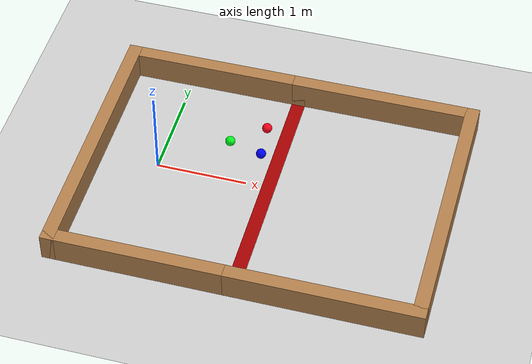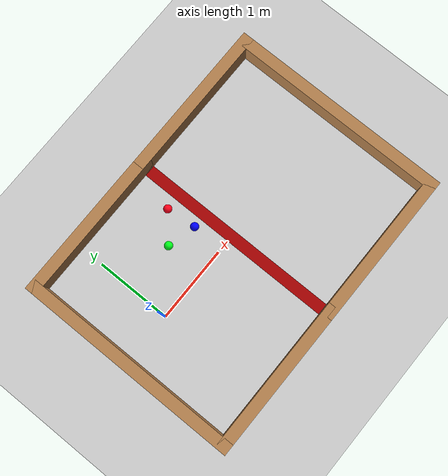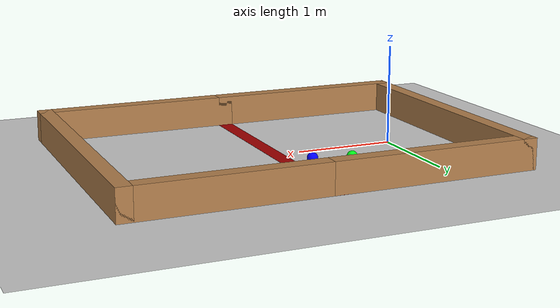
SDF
<sdf version="1.7">
 <world name="default">
  <light name="sun" type="directional">
   <pose>0 0 10 0 -0 0</pose>
   <diffuse>0.8 0.8 0.8 1</diffuse>
   <specular>0.2 0.2 0.2 1</specular>
   <attenuation>
    <range>1000</range>
    <constant>0.9</constant>
    <linear>0.01</linear>
    <quadratic>0.001</quadratic>
   </attenuation>
   <direction>-0.5 0.1 -0.9</direction>
   <spot><inner_angle>0</inner_angle><outer_angle>0</outer_angle><falloff>0</falloff></spot>
  </light>
  <model name="ground_plane">
   <static>1</static>
   <link name="link">
    <collision name="collision">
     <geometry><plane><normal>0 0 1</normal><size>100 100</size></plane></geometry>
     <surface>
      <contact><collide_bitmask>65535</collide_bitmask></contact>
      <friction><ode><mu>100</mu><mu2>50</mu2></ode></friction>
     </surface>
    </collision>
    <visual name="visual">
     <cast_shadows>0</cast_shadows>
     <geometry><plane><normal>0 0 1</normal><size>100 100</size></plane></geometry>
     <material>
      <script><uri>file://media/materials/scripts/gazebo.material</uri><name>Gazebo/Grey</name></script>
     </material>
    </visual>
   </link>
  </model>
  <gravity>0 0 -9.8</gravity>
  <magnetic_field>6e-06 2.3e-05 -4.2e-05</magnetic_field>
  <atmosphere type="adiabatic"/>
  <physics type="ode">
   <max_step_size>0.001</max_step_size>
   <real_time_factor>1</real_time_factor>
   <real_time_update_rate>1000</real_time_update_rate>
  </physics>
  <scene><ambient>0.4 0.4 0.4 1</ambient><background>0.7 0.7 0.7 1</background><shadows>1</shadows></scene>
  <spherical_coordinates>
   <surface_model>EARTH_WGS84</surface_model>
   <latitude_deg>0</latitude_deg>
   <longitude_deg>0</longitude_deg>
   <elevation>0</elevation>
   <heading_deg>0</heading_deg>
  </spherical_coordinates>
  <model name="playground">
   <link name="Wall_67">
    <pose>-1.95 -0.0575 0 0 0 -1.5708</pose>
    <visual name="Wall_67_Visual">
     <pose>0 0 0.155 0 -0 0</pose>
     <geometry><box><size>3 0.15 0.31</size></box></geometry>
     <material>
      <script><uri>file://media/materials/scripts/gazebo.material</uri><name>Gazebo/Wood</name></script>
      <ambient>1 1 1 1</ambient>
      <shader type="pixel"/>
     </material>
     <meta><layer>0</layer></meta>
    </visual>
    <collision name="Wall_67_Collision">
     <pose>0 0 0.155 0 -0 0</pose>
     <geometry><box><size>3 0.15 0.31</size></box></geometry>
     <surface>
      <friction>
       <ode><mu>1</mu><mu2>1</mu2><fdir1>0 0 0</fdir1><slip1>0</slip1><slip2>0</slip2></ode>
       <torsional>
        <coefficient>1</coefficient>
        <patch_radius>0</patch_radius>
        <surface_radius>0</surface_radius>
        <use_patch_radius>1</use_patch_radius>
        <ode><slip>0</slip></ode>
       </torsional>
      </friction>
      <bounce><restitution_coefficient>0</restitution_coefficient><threshold>1e+06</threshold></bounce>
      <contact>
       <collide_without_contact>0</collide_without_contact>
       <collide_without_contact_bitmask>1</collide_without_contact_bitmask>
       <collide_bitmask>1</collide_bitmask>
       <ode>
        <soft_cfm>0</soft_cfm>
        <soft_erp>0.2</soft_erp>
        <kp>1e+13</kp>
        <kd>1</kd>
        <max_vel>0.01</max_vel>
        <min_depth>0</min_depth>
       </ode>
       <bullet>
        <split_impulse>1</split_impulse>
        <split_impulse_penetration_threshold>-0.01</split_impulse_penetration_threshold>
        <soft_cfm>0</soft_cfm>
        <soft_erp>0.2</soft_erp>
        <kp>1e+13</kp>
        <kd>1</kd>
       </bullet>
      </contact>
     </surface>
    </collision>
   </link>
   <link name="Wall_68">
    <pose>-0.975 -1.4825 0 0 -0 0</pose>
    <visual name="Wall_68_Visual">
     <pose>0 0 0.155 0 -0 0</pose>
     <geometry><box><size>2.1 0.15 0.31</size></box></geometry>
     <material>
      <script><uri>file://media/materials/scripts/gazebo.material</uri><name>Gazebo/Wood</name></script>
      <ambient>1 1 1 1</ambient>
      <shader type="pixel"/>
     </material>
     <meta><layer>0</layer></meta>
    </visual>
    <collision name="Wall_68_Collision">
     <pose>0 0 0.155 0 -0 0</pose>
     <geometry><box><size>2.1 0.15 0.31</size></box></geometry>
     <surface>
      <friction>
       <ode><mu>1</mu><mu2>1</mu2><fdir1>0 0 0</fdir1><slip1>0</slip1><slip2>0</slip2></ode>
       <torsional>
        <coefficient>1</coefficient>
        <patch_radius>0</patch_radius>
        <surface_radius>0</surface_radius>
        <use_patch_radius>1</use_patch_radius>
        <ode><slip>0</slip></ode>
       </torsional>
      </friction>
      <bounce><restitution_coefficient>0</restitution_coefficient><threshold>1e+06</threshold></bounce>
      <contact>
       <collide_without_contact>0</collide_without_contact>
       <collide_without_contact_bitmask>1</collide_without_contact_bitmask>
       <collide_bitmask>1</collide_bitmask>
       <ode>
        <soft_cfm>0</soft_cfm>
        <soft_erp>0.2</soft_erp>
        <kp>1e+13</kp>
        <kd>1</kd>
        <max_vel>0.01</max_vel>
        <min_depth>0</min_depth>
       </ode>
       <bullet>
        <split_impulse>1</split_impulse>
        <split_impulse_penetration_threshold>-0.01</split_impulse_penetration_threshold>
        <soft_cfm>0</soft_cfm>
        <soft_erp>0.2</soft_erp>
        <kp>1e+13</kp>
        <kd>1</kd>
       </bullet>
      </contact>
     </surface>
    </collision>
   </link>
   <link name="Wall_71">
    <pose>-0.975 1.3675 0 0 -0 0</pose>
    <visual name="Wall_71_Visual">
     <pose>0 0 0.155 0 -0 0</pose>
     <geometry><box><size>2.1 0.15 0.31</size></box></geometry>
     <material>
      <script><uri>file://media/materials/scripts/gazebo.material</uri><name>Gazebo/Wood</name></script>
      <ambient>1 1 1 1</ambient>
      <shader type="pixel"/>
     </material>
     <meta><layer>0</layer></meta>
    </visual>
    <collision name="Wall_71_Collision">
     <pose>0 0 0.155 0 -0 0</pose>
     <geometry><box><size>2.1 0.15 0.31</size></box></geometry>
     <surface>
      <friction>
       <ode><mu>1</mu><mu2>1</mu2><fdir1>0 0 0</fdir1><slip1>0</slip1><slip2>0</slip2></ode>
       <torsional>
        <coefficient>1</coefficient>
        <patch_radius>0</patch_radius>
        <surface_radius>0</surface_radius>
        <use_patch_radius>1</use_patch_radius>
        <ode><slip>0</slip></ode>
       </torsional>
      </friction>
      <bounce><restitution_coefficient>0</restitution_coefficient><threshold>1e+06</threshold></bounce>
      <contact>
       <collide_without_contact>0</collide_without_contact>
       <collide_without_contact_bitmask>1</collide_without_contact_bitmask>
       <collide_bitmask>1</collide_bitmask>
       <ode>
        <soft_cfm>0</soft_cfm>
        <soft_erp>0.2</soft_erp>
        <kp>1e+13</kp>
        <kd>1</kd>
        <max_vel>0.01</max_vel>
        <min_depth>0</min_depth>
       </ode>
       <bullet>
        <split_impulse>1</split_impulse>
        <split_impulse_penetration_threshold>-0.01</split_impulse_penetration_threshold>
        <soft_cfm>0</soft_cfm>
        <soft_erp>0.2</soft_erp>
        <kp>1e+13</kp>
        <kd>1</kd>
       </bullet>
      </contact>
     </surface>
    </collision>
   </link>
   <link name="Wall_73">
    <pose>0 -0.0575 0 0 0 -1.5708</pose>
    <inertial>
     <mass>1</mass>
     <inertia><ixx>1</ixx><ixy>0</ixy><ixz>0</ixz><iyy>1</iyy><iyz>0</iyz><izz>1</izz></inertia>
    </inertial>
    <visual name="Wall_73_Visual">
     <pose>0 0 0.0005 0 -0 0</pose>
     <geometry><box><size>3 0.15 0.001</size></box></geometry>
     <material>
      <script><uri>file://media/materials/scripts/gazebo.material</uri><name>Gazebo/Grey</name></script>
      <ambient>0.643 0 0 1</ambient>
      <shader type="pixel"><normal_map>__default__</normal_map></shader>
      <diffuse>0.7 0.7 0.7 1</diffuse>
      <specular>0.01 0.01 0.01 1</specular>
      <emissive>0 0 0 1</emissive>
     </material>
     <meta><layer>0</layer></meta>
    </visual>
   </link>
   <link name="Wall_75">
    <pose>0.975 1.3675 0 0 -0 0</pose>
    <visual name="Wall_75_Visual">
     <pose>0 0 0.155 0 -0 0</pose>
     <geometry><box><size>2.1 0.15 0.31</size></box></geometry>
     <material>
      <script><uri>file://media/materials/scripts/gazebo.material</uri><name>Gazebo/Wood</name></script>
      <ambient>1 1 1 1</ambient>
      <shader type="pixel"/>
     </material>
     <meta><layer>0</layer></meta>
    </visual>
    <collision name="Wall_75_Collision">
     <pose>0 0 0.155 0 -0 0</pose>
     <geometry><box><size>2.1 0.15 0.31</size></box></geometry>
     <surface>
      <friction>
       <ode><mu>1</mu><mu2>1</mu2><fdir1>0 0 0</fdir1><slip1>0</slip1><slip2>0</slip2></ode>
       <torsional>
        <coefficient>1</coefficient>
        <patch_radius>0</patch_radius>
        <surface_radius>0</surface_radius>
        <use_patch_radius>1</use_patch_radius>
        <ode><slip>0</slip></ode>
       </torsional>
      </friction>
      <bounce><restitution_coefficient>0</restitution_coefficient><threshold>1e+06</threshold></bounce>
      <contact>
       <collide_without_contact>0</collide_without_contact>
       <collide_without_contact_bitmask>1</collide_without_contact_bitmask>
       <collide_bitmask>1</collide_bitmask>
       <ode>
        <soft_cfm>0</soft_cfm>
        <soft_erp>0.2</soft_erp>
        <kp>1e+13</kp>
        <kd>1</kd>
        <max_vel>0.01</max_vel>
        <min_depth>0</min_depth>
       </ode>
       <bullet>
        <split_impulse>1</split_impulse>
        <split_impulse_penetration_threshold>-0.01</split_impulse_penetration_threshold>
        <soft_cfm>0</soft_cfm>
        <soft_erp>0.2</soft_erp>
        <kp>1e+13</kp>
        <kd>1</kd>
       </bullet>
      </contact>
     </surface>
    </collision>
   </link>
   <link name="Wall_77">
    <pose>0.975 -1.4825 0 0 -0 0</pose>
    <visual name="Wall_77_Visual">
     <pose>0 0 0.155 0 -0 0</pose>
     <geometry><box><size>2.1 0.15 0.31</size></box></geometry>
     <material>
      <script><uri>file://media/materials/scripts/gazebo.material</uri><name>Gazebo/Wood</name></script>
      <ambient>1 1 1 1</ambient>
      <shader type="pixel"/>
     </material>
     <meta><layer>0</layer></meta>
    </visual>
    <collision name="Wall_77_Collision">
     <pose>0 0 0.155 0 -0 0</pose>
     <geometry><box><size>2.1 0.15 0.31</size></box></geometry>
     <surface>
      <friction>
       <ode><mu>1</mu><mu2>1</mu2><fdir1>0 0 0</fdir1><slip1>0</slip1><slip2>0</slip2></ode>
       <torsional>
        <coefficient>1</coefficient>
        <patch_radius>0</patch_radius>
        <surface_radius>0</surface_radius>
        <use_patch_radius>1</use_patch_radius>
        <ode><slip>0</slip></ode>
       </torsional>
      </friction>
      <bounce><restitution_coefficient>0</restitution_coefficient><threshold>1e+06</threshold></bounce>
      <contact>
       <collide_without_contact>0</collide_without_contact>
       <collide_without_contact_bitmask>1</collide_without_contact_bitmask>
       <collide_bitmask>1</collide_bitmask>
       <ode>
        <soft_cfm>0</soft_cfm>
        <soft_erp>0.2</soft_erp>
        <kp>1e+13</kp>
        <kd>1</kd>
        <max_vel>0.01</max_vel>
        <min_depth>0</min_depth>
       </ode>
       <bullet>
        <split_impulse>1</split_impulse>
        <split_impulse_penetration_threshold>-0.01</split_impulse_penetration_threshold>
        <soft_cfm>0</soft_cfm>
        <soft_erp>0.2</soft_erp>
        <kp>1e+13</kp>
        <kd>1</kd>
       </bullet>
      </contact>
     </surface>
    </collision>
   </link>
   <link name="Wall_79">
    <pose>1.95 -0.0575 0 0 0 -1.5708</pose>
    <visual name="Wall_79_Visual">
     <pose>0 0 0.155 0 -0 0</pose>
     <geometry><box><size>3 0.15 0.31</size></box></geometry>
     <material>
      <script><uri>file://media/materials/scripts/gazebo.material</uri><name>Gazebo/Wood</name></script>
      <ambient>1 1 1 1</ambient>
      <shader type="pixel"/>
     </material>
     <meta><layer>0</layer></meta>
    </visual>
    <collision name="Wall_79_Collision">
     <pose>0 0 0.155 0 -0 0</pose>
     <geometry><box><size>3 0.15 0.31</size></box></geometry>
     <surface>
      <friction>
       <ode><mu>1</mu><mu2>1</mu2><fdir1>0 0 0</fdir1><slip1>0</slip1><slip2>0</slip2></ode>
       <torsional>
        <coefficient>1</coefficient>
        <patch_radius>0</patch_radius>
        <surface_radius>0</surface_radius>
        <use_patch_radius>1</use_patch_radius>
        <ode><slip>0</slip></ode>
       </torsional>
      </friction>
      <bounce><restitution_coefficient>0</restitution_coefficient><threshold>1e+06</threshold></bounce>
      <contact>
       <collide_without_contact>0</collide_without_contact>
       <collide_without_contact_bitmask>1</collide_without_contact_bitmask>
       <collide_bitmask>1</collide_bitmask>
       <ode>
        <soft_cfm>0</soft_cfm>
        <soft_erp>0.2</soft_erp>
        <kp>1e+13</kp>
        <kd>1</kd>
        <max_vel>0.01</max_vel>
        <min_depth>0</min_depth>
       </ode>
       <bullet>
        <split_impulse>1</split_impulse>
        <split_impulse_penetration_threshold>-0.01</split_impulse_penetration_threshold>
        <soft_cfm>0</soft_cfm>
        <soft_erp>0.2</soft_erp>
        <kp>1e+13</kp>
        <kd>1</kd>
       </bullet>
      </contact>
     </surface>
    </collision>
   </link>
   <static>1</static>
   <pose>1.25121 0.006341 0 0 -0 0</pose>
  </model>
  <model name="unit_sphere_clone_clone">
   <link name="link">
    <inertial>
     <mass>0.005</mass>
     <inertia>
      <ixx>6.05e-06</ixx>
      <ixy>0</ixy>
      <ixz>0</ixz>
      <iyy>6.05e-06</iyy>
      <iyz>0</iyz>
      <izz>6.05e-06</izz>
     </inertia>
    </inertial>
    <visual name="visual">
     <geometry><sphere><radius>0.055</radius></sphere></geometry>
     <material>
      <script><name>Gazebo/Grey</name><uri>file://media/materials/scripts/gazebo.material</uri></script>
      <shader type="pixel"><normal_map>__default__</normal_map></shader>
      <ambient>0 0 1 1</ambient>
      <diffuse>0.7 0.7 0.7 1</diffuse>
      <specular>0.01 0.01 0.01 1</specular>
      <emissive>0 0 0 1</emissive>
     </material>
    </visual>
    <collision name="collision">
     <geometry><sphere><radius>0.055</radius></sphere></geometry>
     <surface>
      <friction>
       <ode><mu>0.3</mu><mu2>0.3</mu2><fdir1>0 0 0</fdir1><slip1>0</slip1><slip2>0</slip2></ode>
       <torsional>
        <coefficient>1</coefficient>
        <patch_radius>0</patch_radius>
        <surface_radius>0</surface_radius>
        <use_patch_radius>1</use_patch_radius>
        <ode><slip>0</slip></ode>
       </torsional>
      </friction>
      <bounce><restitution_coefficient>0</restitution_coefficient><threshold>1e+06</threshold></bounce>
      <contact>
       <collide_without_contact>0</collide_without_contact>
       <collide_without_contact_bitmask>1</collide_without_contact_bitmask>
       <collide_bitmask>1</collide_bitmask>
       <ode>
        <soft_cfm>0</soft_cfm>
        <soft_erp>0.2</soft_erp>
        <kp>1e+13</kp>
        <kd>1</kd>
        <max_vel>0.01</max_vel>
        <min_depth>0</min_depth>
       </ode>
       <bullet>
        <split_impulse>1</split_impulse>
        <split_impulse_penetration_threshold>-0.01</split_impulse_penetration_threshold>
        <soft_cfm>0</soft_cfm>
        <soft_erp>0.2</soft_erp>
        <kp>1e+13</kp>
        <kd>1</kd>
       </bullet>
      </contact>
     </surface>
    </collision>
   </link>
   <static>0</static>
   <pose>1.05546 0.417815 0.055 0 -0 0</pose>
  </model>
  <model name="unit_sphere">
   <link name="link">
    <inertial>
     <mass>0</mass>
     <inertia><ixx>0</ixx><ixy>0</ixy><ixz>0</ixz><iyy>0</iyy><iyz>0</iyz><izz>0</izz></inertia>
    </inertial>
    <visual name="visual">
     <geometry><sphere><radius>0.055</radius></sphere></geometry>
     <material>
      <script><name>Gazebo/Grey</name><uri>file://media/materials/scripts/gazebo.material</uri></script>
      <shader type="pixel"><normal_map>__default__</normal_map></shader>
      <ambient>0 1 0.1 1</ambient>
      <diffuse>0.7 0.7 0.7 1</diffuse>
      <specular>0.01 0.01 0.01 1</specular>
      <emissive>0 0 0 1</emissive>
     </material>
    </visual>
    <collision name="collision">
     <geometry><sphere><radius>0.055</radius></sphere></geometry>
     <surface>
      <friction>
       <ode><mu>0.3</mu><mu2>0.3</mu2><fdir1>0 0 0</fdir1><slip1>0</slip1><slip2>0</slip2></ode>
       <torsional>
        <coefficient>1</coefficient>
        <patch_radius>0</patch_radius>
        <surface_radius>0</surface_radius>
        <use_patch_radius>1</use_patch_radius>
        <ode><slip>0</slip></ode>
       </torsional>
      </friction>
      <bounce><restitution_coefficient>0</restitution_coefficient><threshold>1e+06</threshold></bounce>
      <contact>
       <collide_without_contact>0</collide_without_contact>
       <collide_without_contact_bitmask>1</collide_without_contact_bitmask>
       <collide_bitmask>1</collide_bitmask>
       <ode>
        <soft_cfm>0</soft_cfm>
        <soft_erp>0.2</soft_erp>
        <kp>1e+13</kp>
        <kd>1</kd>
        <max_vel>0.01</max_vel>
        <min_depth>0</min_depth>
       </ode>
       <bullet>
        <split_impulse>1</split_impulse>
        <split_impulse_penetration_threshold>-0.01</split_impulse_penetration_threshold>
        <soft_cfm>0</soft_cfm>
        <soft_erp>0.2</soft_erp>
        <kp>1e+13</kp>
        <kd>1</kd>
       </bullet>
      </contact>
     </surface>
    </collision>
   </link>
   <static>0</static>
   <pose>0.67815 0.514078 0.055 0 -0 0</pose>
  </model>
  <model name="unit_sphere_clone_clone_clone">
   <link name="link">
    <inertial>
     <mass>0</mass>
     <inertia><ixx>0</ixx><ixy>0</ixy><ixz>0</ixz><iyy>0</iyy><iyz>0</iyz><izz>0</izz></inertia>
    </inertial>
    <visual name="visual">
     <geometry><sphere><radius>0.055</radius></sphere></geometry>
     <material>
      <script><name>Gazebo/Grey</name><uri>file://media/materials/scripts/gazebo.material</uri></script>
      <shader type="pixel"><normal_map>__default__</normal_map></shader>
      <ambient>1 0 0.1 1</ambient>
      <diffuse>0.7 0.7 0.7 1</diffuse>
      <specular>0.01 0.01 0.01 1</specular>
      <emissive>0 0 0 1</emissive>
     </material>
    </visual>
    <collision name="collision">
     <geometry><sphere><radius>0.055</radius></sphere></geometry>
     <surface>
      <friction>
       <ode><mu>0.3</mu><mu2>0.3</mu2><fdir1>0 0 0</fdir1><slip1>0</slip1><slip2>0</slip2></ode>
       <torsional>
        <coefficient>1</coefficient>
        <patch_radius>0</patch_radius>
        <surface_radius>0</surface_radius>
        <use_patch_radius>1</use_patch_radius>
        <ode><slip>0</slip></ode>
       </torsional>
      </friction>
      <bounce><restitution_coefficient>0</restitution_coefficient><threshold>1e+06</threshold></bounce>
      <contact>
       <collide_without_contact>0</collide_without_contact>
       <collide_without_contact_bitmask>1</collide_without_contact_bitmask>
       <collide_bitmask>1</collide_bitmask>
       <ode>
        <soft_cfm>0</soft_cfm>
        <soft_erp>0.2</soft_erp>
        <kp>1e+13</kp>
        <kd>1</kd>
        <max_vel>0.01</max_vel>
        <min_depth>0</min_depth>
       </ode>
       <bullet>
        <split_impulse>1</split_impulse>
        <split_impulse_penetration_threshold>-0.01</split_impulse_penetration_threshold>
        <soft_cfm>0</soft_cfm>
        <soft_erp>0.2</soft_erp>
        <kp>1e+13</kp>
        <kd>1</kd>
       </bullet>
      </contact>
     </surface>
    </collision>
   </link>
   <static>0</static>
   <pose>1.01925 0.810882 0.055 0 -0 0</pose>
  </model>
 </world>
</sdf>
